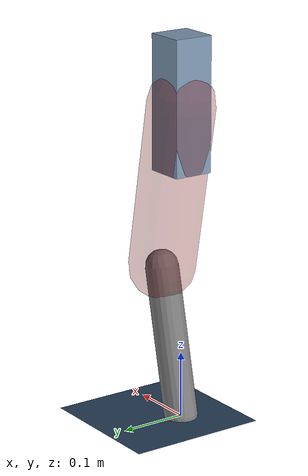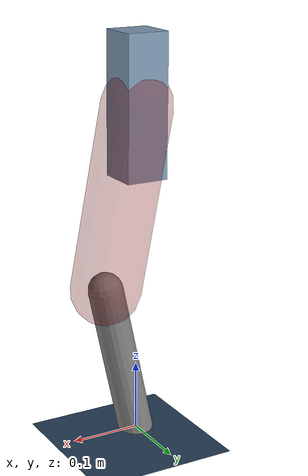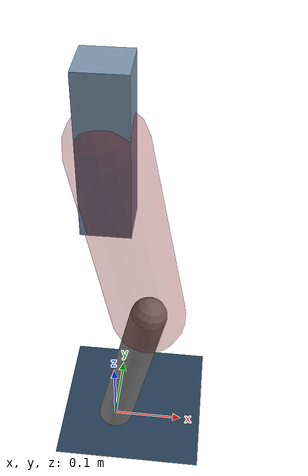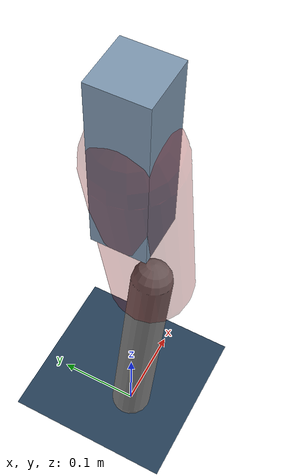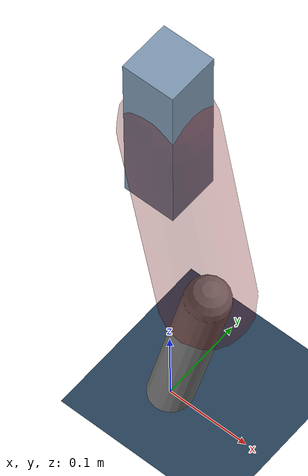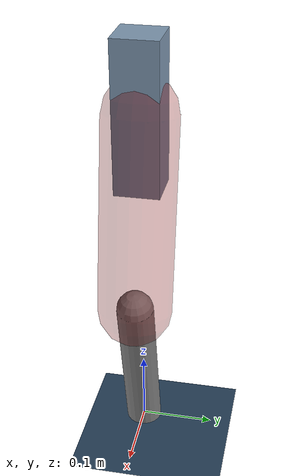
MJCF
<mujoco model="Hopper2D">
	<compiler inertiafromgeom="true" angle="radian" />
	<option timestep="0.001" integrator="implicit" cone="elliptic" solver="Newton" tolerance="1e-10" />

	<default>
		<geom contype="1" conaffinity="1" condim="3" friction="2 0.005 0.0001" solref="0.005 1" />
		<joint limited="true" damping="0.1" />
	</default>

	<asset>
		<texture name="skybox" type="skybox" builtin="gradient" rgb1=".4 .6 .8" rgb2="0 0 0" width="800" height="800" />
		<texture name="grid" type="2d" builtin="checker" rgb1=".1 .2 .3" rgb2=".2 .3 .4" width="300" height="300" mark="edge" markrgb=".2 .3 .4" />
		<material name="ground" texture="grid" texrepeat="1 1" texuniform="true" reflectance="0.1" />
		<material name="leg" rgba="0.5 0.6 0.7 1" />
	</asset>

	<worldbody>

		<geom name="floor" type="plane" size="5 5 0.25" material="ground" />

		<light directional="false" diffuse="0.8 0.8 0.8" specular="0.3 0.3 0.3" pos="0 0 2" dir="0 0 -1" />
		<light mode="targetbodycom" target="base" directional="false" diffuse="0.8 0.8 0.8" specular="0.3 0.3 0.3" pos="0 0 2" dir="0 0 -1" />

		<camera name="fixed" pos="0 -2 1" xyaxes="1 0 0 0 0 1" />
		<camera name="tracking" mode="trackcom" pos="0 -3 1" />

		<body name="root" pos="0 0 0.4782060229531675">
			<joint name="slide_x" type="slide" axis="1 0 0" range="-100 100" />
			<joint name="slide_z" type="slide" axis="0 0 1" range="0 10" />

			<body name="base" pos="0 0 0">
				<geom name="torso" type="box" size="0.03 0.03 0.1" mass="1.5699999999999998" material="leg" />

				<body name="link1" pos="0 0 0" euler="0 1.3813681861944733 0">
					<joint type="hinge" axis="0 -1 0" pos="0 0 0" name="hinge1" limited="true" range="-3.14 3.14" stiffness="0" damping="0.1" />
					<geom name="thigh" type="capsule" fromto="0 0 0 0.2604306732831178 0 0" size="0.05" rgba="0.5 0 0 0.3" mass="0.8835197505361062" />

					<body name="link2" pos="0.2604306732831178 0 0" euler="0 0.40641978593633654 0">
						<joint type="hinge" axis="0 -1 0" pos="0 0 0" name="hinge2" limited="true" range="-3.14 3.14" stiffness="0" damping="0.1" />
						<geom name="shank" type="capsule" fromto="0 0 0 0.22777534967004973 0 0" size="0.025" mass="0.4241202797360398" />

					</body>
				</body>
			</body>
		</body>
	</worldbody>

	<actuator>
		<motor name="torque1" joint="hinge1" ctrlrange="-48.063036909800985 48.063036909800985" ctrllimited="true" gear="1" />
		<motor name="torque2" joint="hinge2" ctrlrange="-35.08811436869557 35.08811436869557" ctrllimited="true" gear="1" />
	</actuator>
</mujoco>
